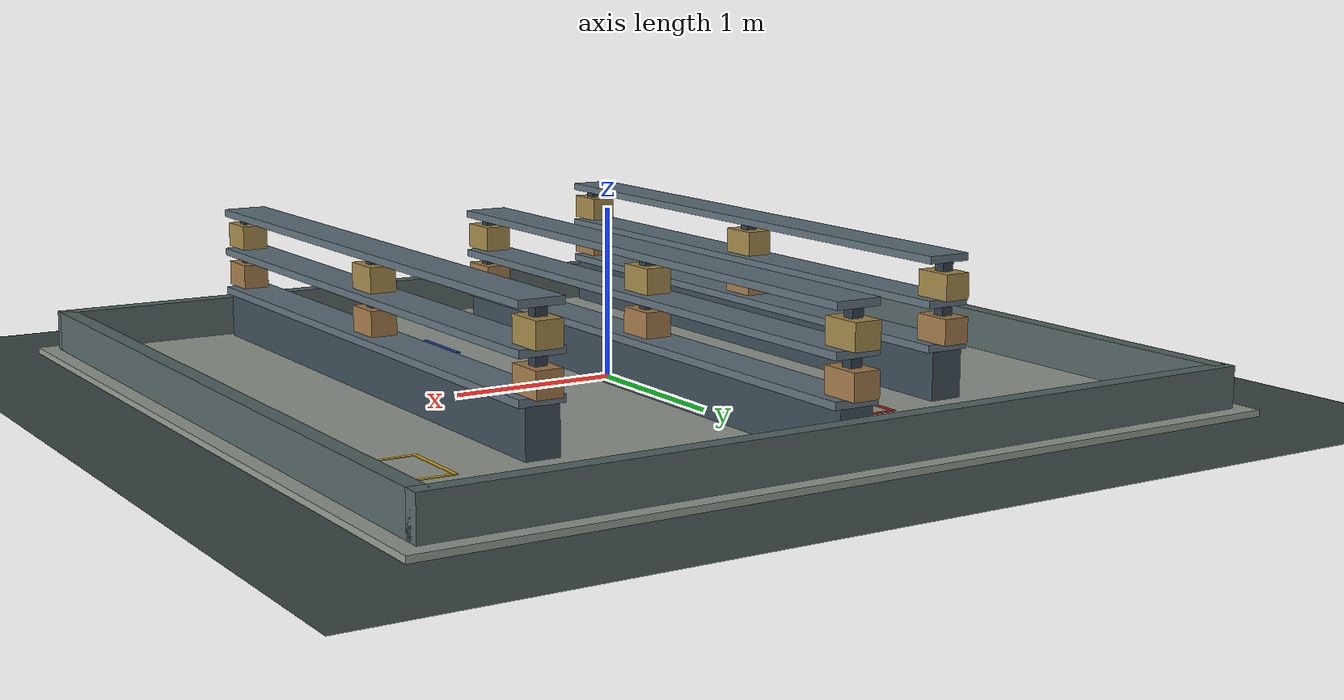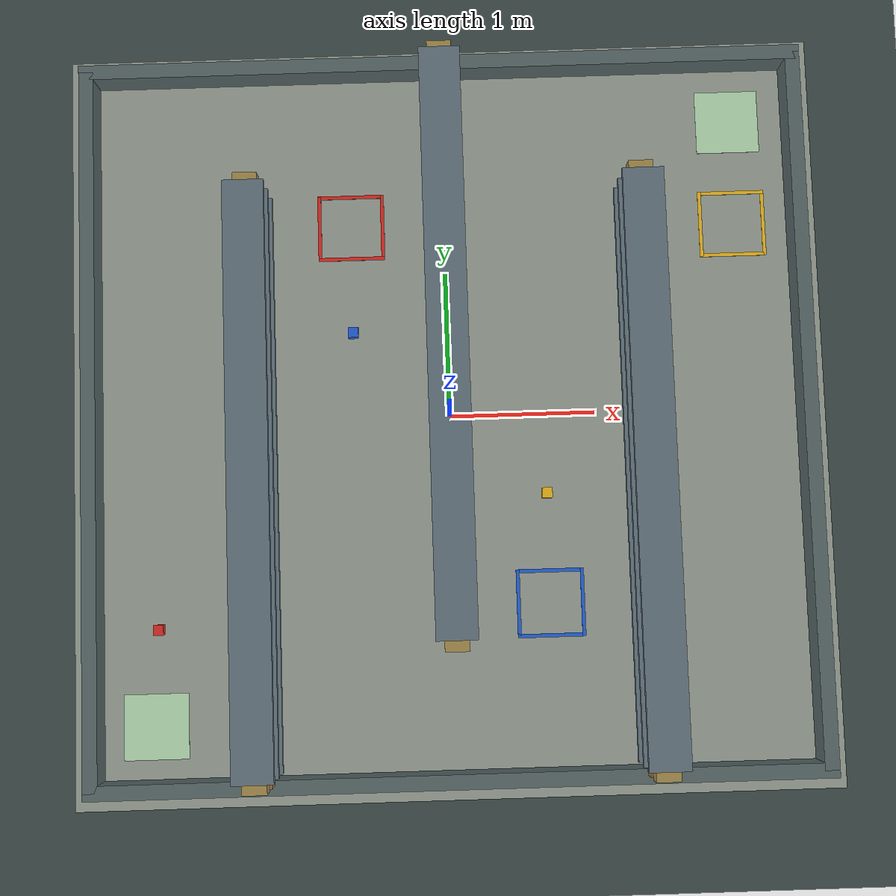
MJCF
<?xml version='1.0' encoding='utf-8'?>
<mujoco model="shelf-maze"><compiler angle="radian" /><asset><material name="appearance_ground" rgba="0.24 0.29 0.28 1.0" roughness=".9" metallic="0" /><material name="appearance_floor" rgba="0.58 0.61 0.57 1.0" roughness=".9" metallic="0" /><material name="appearance_shelf_0_plinth" rgba="0.24 0.3 0.34 1.0" roughness=".9" metallic="0" /><material name="appearance_shelf_0_level_0.3" rgba="0.38 0.45 0.49 1.0" roughness=".9" metallic="0" /><material name="appearance_shelf_0_level_0.55" rgba="0.38 0.45 0.49 1.0" roughness=".9" metallic="0" /><material name="appearance_shelf_0_level_0.8" rgba="0.38 0.45 0.49 1.0" roughness=".9" metallic="0" /><material name="appearance_shelf_0_post_0" rgba="0.18 0.24 0.28 1.0" roughness=".9" metallic="0" /><material name="appearance_shelf_0_stock_0_0" rgba="0.64 0.48 0.29 1.0" roughness=".9" metallic="0" /><material name="appearance_shelf_0_stock_0_1" rgba="0.64 0.54 0.29 1.0" roughness=".9" metallic="0" /><material name="appearance_shelf_0_post_1" rgba="0.18 0.24 0.28 1.0" roughness=".9" metallic="0" /><material name="appearance_shelf_0_stock_1_0" rgba="0.64 0.48 0.29 1.0" roughness=".9" metallic="0" /><material name="appearance_shelf_0_stock_1_1" rgba="0.64 0.54 0.29 1.0" roughness=".9" metallic="0" /><material name="appearance_shelf_0_post_2" rgba="0.18 0.24 0.28 1.0" roughness=".9" metallic="0" /><material name="appearance_shelf_0_stock_2_0" rgba="0.64 0.48 0.29 1.0" roughness=".9" metallic="0" /><material name="appearance_shelf_0_stock_2_1" rgba="0.64 0.54 0.29 1.0" roughness=".9" metallic="0" /><material name="appearance_shelf_1_plinth" rgba="0.24 0.3 0.34 1.0" roughness=".9" metallic="0" /><material name="appearance_shelf_1_level_0.3" rgba="0.38 0.45 0.49 1.0" roughness=".9" metallic="0" /><material name="appearance_shelf_1_level_0.55" rgba="0.38 0.45 0.49 1.0" roughness=".9" metallic="0" /><material name="appearance_shelf_1_level_0.8" rgba="0.38 0.45 0.49 1.0" roughness=".9" metallic="0" /><material name="appearance_shelf_1_post_0" rgba="0.18 0.24 0.28 1.0" roughness=".9" metallic="0" /><material name="appearance_shelf_1_stock_0_0" rgba="0.64 0.48 0.29 1.0" roughness=".9" metallic="0" /><material name="appearance_shelf_1_stock_0_1" rgba="0.64 0.54 0.29 1.0" roughness=".9" metallic="0" /><material name="appearance_shelf_1_post_1" rgba="0.18 0.24 0.28 1.0" roughness=".9" metallic="0" /><material name="appearance_shelf_1_stock_1_0" rgba="0.64 0.48 0.29 1.0" roughness=".9" metallic="0" /><material name="appearance_shelf_1_stock_1_1" rgba="0.64 0.54 0.29 1.0" roughness=".9" metallic="0" /><material name="appearance_shelf_1_post_2" rgba="0.18 0.24 0.28 1.0" roughness=".9" metallic="0" /><material name="appearance_shelf_1_stock_2_0" rgba="0.64 0.48 0.29 1.0" roughness=".9" metallic="0" /><material name="appearance_shelf_1_stock_2_1" rgba="0.64 0.54 0.29 1.0" roughness=".9" metallic="0" /><material name="appearance_shelf_2_plinth" rgba="0.24 0.3 0.34 1.0" roughness=".9" metallic="0" /><material name="appearance_shelf_2_level_0.3" rgba="0.38 0.45 0.49 1.0" roughness=".9" metallic="0" /><material name="appearance_shelf_2_level_0.55" rgba="0.38 0.45 0.49 1.0" roughness=".9" metallic="0" /><material name="appearance_shelf_2_level_0.8" rgba="0.38 0.45 0.49 1.0" roughness=".9" metallic="0" /><material name="appearance_shelf_2_post_0" rgba="0.18 0.24 0.28 1.0" roughness=".9" metallic="0" /><material name="appearance_shelf_2_stock_0_0" rgba="0.64 0.48 0.29 1.0" roughness=".9" metallic="0" /><material name="appearance_shelf_2_stock_0_1" rgba="0.64 0.54 0.29 1.0" roughness=".9" metallic="0" /><material name="appearance_shelf_2_post_1" rgba="0.18 0.24 0.28 1.0" roughness=".9" metallic="0" /><material name="appearance_shelf_2_stock_1_0" rgba="0.64 0.48 0.29 1.0" roughness=".9" metallic="0" /><material name="appearance_shelf_2_stock_1_1" rgba="0.64 0.54 0.29 1.0" roughness=".9" metallic="0" /><material name="appearance_shelf_2_post_2" rgba="0.18 0.24 0.28 1.0" roughness=".9" metallic="0" /><material name="appearance_shelf_2_stock_2_0" rgba="0.64 0.48 0.29 1.0" roughness=".9" metallic="0" /><material name="appearance_shelf_2_stock_2_1" rgba="0.64 0.54 0.29 1.0" roughness=".9" metallic="0" /><material name="appearance_boundary_y-2.45" rgba="0.34 0.4 0.4 1.0" roughness=".9" metallic="0" /><material name="appearance_boundary_y2.45" rgba="0.34 0.4 0.4 1.0" roughness=".9" metallic="0" /><material name="appearance_boundary_x-2.45" rgba="0.34 0.4 0.4 1.0" roughness=".9" metallic="0" /><material name="appearance_boundary_x2.45" rgba="0.34 0.4 0.4 1.0" roughness=".9" metallic="0" /><material name="appearance_red_cube" rgba="0.84 0.16 0.13 1.0" roughness=".9" metallic="0" /><material name="appearance_red_target_-0.22_0" rgba="0.84 0.16 0.13 1.0" roughness=".9" metallic="0" /><material name="appearance_red_target_0.22_0" rgba="0.84 0.16 0.13 1.0" roughness=".9" metallic="0" /><material name="appearance_red_target_0_-0.22" rgba="0.84 0.16 0.13 1.0" roughness=".9" metallic="0" /><material name="appearance_red_target_0_0.22" rgba="0.84 0.16 0.13 1.0" roughness=".9" metallic="0" /><material name="appearance_blue_cube" rgba="0.13 0.37 0.83 1.0" roughness=".9" metallic="0" /><material name="appearance_blue_target_-0.22_0" rgba="0.13 0.37 0.83 1.0" roughness=".9" metallic="0" /><material name="appearance_blue_target_0.22_0" rgba="0.13 0.37 0.83 1.0" roughness=".9" metallic="0" /><material name="appearance_blue_target_0_-0.22" rgba="0.13 0.37 0.83 1.0" roughness=".9" metallic="0" /><material name="appearance_blue_target_0_0.22" rgba="0.13 0.37 0.83 1.0" roughness=".9" metallic="0" /><material name="appearance_yellow_cube" rgba="0.92 0.71 0.1 1.0" roughness=".9" metallic="0" /><material name="appearance_yellow_target_-0.22_0" rgba="0.92 0.71 0.1 1.0" roughness=".9" metallic="0" /><material name="appearance_yellow_target_0.22_0" rgba="0.92 0.71 0.1 1.0" roughness=".9" metallic="0" /><material name="appearance_yellow_target_0_-0.22" rgba="0.92 0.71 0.1 1.0" roughness=".9" metallic="0" /><material name="appearance_yellow_target_0_0.22" rgba="0.92 0.71 0.1 1.0" roughness=".9" metallic="0" /><material name="appearance_start_paint" rgba="0.7 0.85 0.69 1.0" roughness=".9" metallic="0" /><material name="appearance_exit_paint" rgba="0.7 0.85 0.69 1.0" roughness=".9" metallic="0" /></asset><worldbody><geom name="ground" type="plane" pos="0 0 -0.03" size="20 20 .1" rgba=".24 .29 .28 1" friction="1 .005 .0001" material="appearance_ground" /><light name="sun" pos="0 0 7" dir="0 0 -1" directional="true" diffuse=".25 .25 .25" /><geom name="floor" type="box" pos="0 0 -0.025" size="2.6 2.6 0.025" rgba="0.58 0.61 0.57 1" friction="1 .005 .0001" material="appearance_floor" /><geom name="shelf_0_plinth" type="box" pos="-1.3 -0.425 0.14" size="0.1 1.925 0.14" rgba="0.24 0.3 0.34 1" friction="1 .005 .0001" material="appearance_shelf_0_plinth" /><geom name="shelf_0_level_0.3" type="box" pos="-1.3 -0.425 0.3" size="0.135 1.925 0.022" rgba="0.38 0.45 0.49 1" friction="1 .005 .0001" material="appearance_shelf_0_level_0.3" /><geom name="shelf_0_level_0.55" type="box" pos="-1.3 -0.425 0.55" size="0.135 1.925 0.022" rgba="0.38 0.45 0.49 1" friction="1 .005 .0001" material="appearance_shelf_0_level_0.55" /><geom name="shelf_0_level_0.8" type="box" pos="-1.3 -0.425 0.8" size="0.135 1.925 0.022" rgba="0.38 0.45 0.49 1" friction="1 .005 .0001" material="appearance_shelf_0_level_0.8" /><geom name="shelf_0_post_0" type="box" pos="-1.3 -2.305 0.4" size="0.035 0.035 0.4" rgba="0.18 0.24 0.28 1" friction="1 .005 .0001" material="appearance_shelf_0_post_0" /><geom name="shelf_0_stock_0_0" type="box" pos="-1.3 -2.305 0.4" size="0.08 0.12 0.075" rgba="0.64 0.48 0.29 1" friction="1 .005 .0001" contype="0" conaffinity="0" mass="0" material="appearance_shelf_0_stock_0_0" /><geom name="shelf_0_stock_0_1" type="box" pos="-1.3 -2.305 0.65" size="0.08 0.12 0.075" rgba="0.64 0.54 0.29 1" friction="1 .005 .0001" contype="0" conaffinity="0" mass="0" material="appearance_shelf_0_stock_0_1" /><geom name="shelf_0_post_1" type="box" pos="-1.3 -0.425 0.4" size="0.035 0.035 0.4" rgba="0.18 0.24 0.28 1" friction="1 .005 .0001" material="appearance_shelf_0_post_1" /><geom name="shelf_0_stock_1_0" type="box" pos="-1.3 -0.425 0.4" size="0.08 0.12 0.075" rgba="0.64 0.48 0.29 1" friction="1 .005 .0001" contype="0" conaffinity="0" mass="0" material="appearance_shelf_0_stock_1_0" /><geom name="shelf_0_stock_1_1" type="box" pos="-1.3 -0.425 0.65" size="0.08 0.12 0.075" rgba="0.64 0.54 0.29 1" friction="1 .005 .0001" contype="0" conaffinity="0" mass="0" material="appearance_shelf_0_stock_1_1" /><geom name="shelf_0_post_2" type="box" pos="-1.3 1.455 0.4" size="0.035 0.035 0.4" rgba="0.18 0.24 0.28 1" friction="1 .005 .0001" material="appearance_shelf_0_post_2" /><geom name="shelf_0_stock_2_0" type="box" pos="-1.3 1.455 0.4" size="0.08 0.12 0.075" rgba="0.64 0.48 0.29 1" friction="1 .005 .0001" contype="0" conaffinity="0" mass="0" material="appearance_shelf_0_stock_2_0" /><geom name="shelf_0_stock_2_1" type="box" pos="-1.3 1.455 0.65" size="0.08 0.12 0.075" rgba="0.64 0.54 0.29 1" friction="1 .005 .0001" contype="0" conaffinity="0" mass="0" material="appearance_shelf_0_stock_2_1" /><geom name="shelf_1_plinth" type="box" pos="0 0.425 0.14" size="0.1 1.925 0.14" rgba="0.24 0.3 0.34 1" friction="1 .005 .0001" material="appearance_shelf_1_plinth" /><geom name="shelf_1_level_0.3" type="box" pos="0 0.425 0.3" size="0.135 1.925 0.022" rgba="0.38 0.45 0.49 1" friction="1 .005 .0001" material="appearance_shelf_1_level_0.3" /><geom name="shelf_1_level_0.55" type="box" pos="0 0.425 0.55" size="0.135 1.925 0.022" rgba="0.38 0.45 0.49 1" friction="1 .005 .0001" material="appearance_shelf_1_level_0.55" /><geom name="shelf_1_level_0.8" type="box" pos="0 0.425 0.8" size="0.135 1.925 0.022" rgba="0.38 0.45 0.49 1" friction="1 .005 .0001" material="appearance_shelf_1_level_0.8" /><geom name="shelf_1_post_0" type="box" pos="0 -1.455 0.4" size="0.035 0.035 0.4" rgba="0.18 0.24 0.28 1" friction="1 .005 .0001" material="appearance_shelf_1_post_0" /><geom name="shelf_1_stock_0_0" type="box" pos="0 -1.455 0.4" size="0.08 0.12 0.075" rgba="0.64 0.48 0.29 1" friction="1 .005 .0001" contype="0" conaffinity="0" mass="0" material="appearance_shelf_1_stock_0_0" /><geom name="shelf_1_stock_0_1" type="box" pos="0 -1.455 0.65" size="0.08 0.12 0.075" rgba="0.64 0.54 0.29 1" friction="1 .005 .0001" contype="0" conaffinity="0" mass="0" material="appearance_shelf_1_stock_0_1" /><geom name="shelf_1_post_1" type="box" pos="0 0.425 0.4" size="0.035 0.035 0.4" rgba="0.18 0.24 0.28 1" friction="1 .005 .0001" material="appearance_shelf_1_post_1" /><geom name="shelf_1_stock_1_0" type="box" pos="0 0.425 0.4" size="0.08 0.12 0.075" rgba="0.64 0.48 0.29 1" friction="1 .005 .0001" contype="0" conaffinity="0" mass="0" material="appearance_shelf_1_stock_1_0" /><geom name="shelf_1_stock_1_1" type="box" pos="0 0.425 0.65" size="0.08 0.12 0.075" rgba="0.64 0.54 0.29 1" friction="1 .005 .0001" contype="0" conaffinity="0" mass="0" material="appearance_shelf_1_stock_1_1" /><geom name="shelf_1_post_2" type="box" pos="0 2.305 0.4" size="0.035 0.035 0.4" rgba="0.18 0.24 0.28 1" friction="1 .005 .0001" material="appearance_shelf_1_post_2" /><geom name="shelf_1_stock_2_0" type="box" pos="0 2.305 0.4" size="0.08 0.12 0.075" rgba="0.64 0.48 0.29 1" friction="1 .005 .0001" contype="0" conaffinity="0" mass="0" material="appearance_shelf_1_stock_2_0" /><geom name="shelf_1_stock_2_1" type="box" pos="0 2.305 0.65" size="0.08 0.12 0.075" rgba="0.64 0.54 0.29 1" friction="1 .005 .0001" contype="0" conaffinity="0" mass="0" material="appearance_shelf_1_stock_2_1" /><geom name="shelf_2_plinth" type="box" pos="1.3 -0.425 0.14" size="0.1 1.925 0.14" rgba="0.24 0.3 0.34 1" friction="1 .005 .0001" material="appearance_shelf_2_plinth" /><geom name="shelf_2_level_0.3" type="box" pos="1.3 -0.425 0.3" size="0.135 1.925 0.022" rgba="0.38 0.45 0.49 1" friction="1 .005 .0001" material="appearance_shelf_2_level_0.3" /><geom name="shelf_2_level_0.55" type="box" pos="1.3 -0.425 0.55" size="0.135 1.925 0.022" rgba="0.38 0.45 0.49 1" friction="1 .005 .0001" material="appearance_shelf_2_level_0.55" /><geom name="shelf_2_level_0.8" type="box" pos="1.3 -0.425 0.8" size="0.135 1.925 0.022" rgba="0.38 0.45 0.49 1" friction="1 .005 .0001" material="appearance_shelf_2_level_0.8" /><geom name="shelf_2_post_0" type="box" pos="1.3 -2.305 0.4" size="0.035 0.035 0.4" rgba="0.18 0.24 0.28 1" friction="1 .005 .0001" material="appearance_shelf_2_post_0" /><geom name="shelf_2_stock_0_0" type="box" pos="1.3 -2.305 0.4" size="0.08 0.12 0.075" rgba="0.64 0.48 0.29 1" friction="1 .005 .0001" contype="0" conaffinity="0" mass="0" material="appearance_shelf_2_stock_0_0" /><geom name="shelf_2_stock_0_1" type="box" pos="1.3 -2.305 0.65" size="0.08 0.12 0.075" rgba="0.64 0.54 0.29 1" friction="1 .005 .0001" contype="0" conaffinity="0" mass="0" material="appearance_shelf_2_stock_0_1" /><geom name="shelf_2_post_1" type="box" pos="1.3 -0.425 0.4" size="0.035 0.035 0.4" rgba="0.18 0.24 0.28 1" friction="1 .005 .0001" material="appearance_shelf_2_post_1" /><geom name="shelf_2_stock_1_0" type="box" pos="1.3 -0.425 0.4" size="0.08 0.12 0.075" rgba="0.64 0.48 0.29 1" friction="1 .005 .0001" contype="0" conaffinity="0" mass="0" material="appearance_shelf_2_stock_1_0" /><geom name="shelf_2_stock_1_1" type="box" pos="1.3 -0.425 0.65" size="0.08 0.12 0.075" rgba="0.64 0.54 0.29 1" friction="1 .005 .0001" contype="0" conaffinity="0" mass="0" material="appearance_shelf_2_stock_1_1" /><geom name="shelf_2_post_2" type="box" pos="1.3 1.455 0.4" size="0.035 0.035 0.4" rgba="0.18 0.24 0.28 1" friction="1 .005 .0001" material="appearance_shelf_2_post_2" /><geom name="shelf_2_stock_2_0" type="box" pos="1.3 1.455 0.4" size="0.08 0.12 0.075" rgba="0.64 0.48 0.29 1" friction="1 .005 .0001" contype="0" conaffinity="0" mass="0" material="appearance_shelf_2_stock_2_0" /><geom name="shelf_2_stock_2_1" type="box" pos="1.3 1.455 0.65" size="0.08 0.12 0.075" rgba="0.64 0.54 0.29 1" friction="1 .005 .0001" contype="0" conaffinity="0" mass="0" material="appearance_shelf_2_stock_2_1" /><geom name="boundary_y-2.45" type="box" pos="0 -2.45 0.12" size="2.5 0.05 0.12" rgba="0.34 0.4 0.4 1" friction="1 .005 .0001" material="appearance_boundary_y-2.45" /><geom name="boundary_y2.45" type="box" pos="0 2.45 0.12" size="2.5 0.05 0.12" rgba="0.34 0.4 0.4 1" friction="1 .005 .0001" material="appearance_boundary_y2.45" /><geom name="boundary_x-2.45" type="box" pos="-2.45 0 0.12" size="0.05 2.45 0.12" rgba="0.34 0.4 0.4 1" friction="1 .005 .0001" material="appearance_boundary_x-2.45" /><geom name="boundary_x2.45" type="box" pos="2.45 0 0.12" size="0.05 2.45 0.12" rgba="0.34 0.4 0.4 1" friction="1 .005 .0001" material="appearance_boundary_x2.45" /><body name="prop:red" pos="-2.02 -1.4 0.036"><freejoint name="prop:red:free" /><geom name="red_cube" type="box" pos="0 0 0" size="0.035 0.035 0.035" rgba="0.84 0.16 0.13 1" friction="1 .005 .0001" mass=".04" material="appearance_red_cube" /></body><geom name="red_target_-0.22_0" type="box" pos="-0.87 1.35 0.002" size="0.012 0.23 0.002" rgba="0.84 0.16 0.13 1" friction="1 .005 .0001" contype="0" conaffinity="0" mass="0" material="appearance_red_target_-0.22_0" /><geom name="red_target_0.22_0" type="box" pos="-0.43000000000000005 1.35 0.002" size="0.012 0.23 0.002" rgba="0.84 0.16 0.13 1" friction="1 .005 .0001" contype="0" conaffinity="0" mass="0" material="appearance_red_target_0.22_0" /><geom name="red_target_0_-0.22" type="box" pos="-0.65 1.1300000000000001 0.002" size="0.23 0.012 0.002" rgba="0.84 0.16 0.13 1" friction="1 .005 .0001" contype="0" conaffinity="0" mass="0" material="appearance_red_target_0_-0.22" /><geom name="red_target_0_0.22" type="box" pos="-0.65 1.57 0.002" size="0.23 0.012 0.002" rgba="0.84 0.16 0.13 1" friction="1 .005 .0001" contype="0" conaffinity="0" mass="0" material="appearance_red_target_0_0.22" /><site name="target_red" pos="-0.65 1.35 0.04" size=".2 .2 .08" type="box" rgba="0 0 0 0" /><body name="prop:blue" pos="-0.65 0.6 0.036"><freejoint name="prop:blue:free" /><geom name="blue_cube" type="box" pos="0 0 0" size="0.035 0.035 0.035" rgba="0.13 0.37 0.83 1" friction="1 .005 .0001" mass=".04" material="appearance_blue_cube" /></body><geom name="blue_target_-0.22_0" type="box" pos="0.43000000000000005 -1.3 0.002" size="0.012 0.23 0.002" rgba="0.13 0.37 0.83 1" friction="1 .005 .0001" contype="0" conaffinity="0" mass="0" material="appearance_blue_target_-0.22_0" /><geom name="blue_target_0.22_0" type="box" pos="0.87 -1.3 0.002" size="0.012 0.23 0.002" rgba="0.13 0.37 0.83 1" friction="1 .005 .0001" contype="0" conaffinity="0" mass="0" material="appearance_blue_target_0.22_0" /><geom name="blue_target_0_-0.22" type="box" pos="0.65 -1.52 0.002" size="0.23 0.012 0.002" rgba="0.13 0.37 0.83 1" friction="1 .005 .0001" contype="0" conaffinity="0" mass="0" material="appearance_blue_target_0_-0.22" /><geom name="blue_target_0_0.22" type="box" pos="0.65 -1.08 0.002" size="0.23 0.012 0.002" rgba="0.13 0.37 0.83 1" friction="1 .005 .0001" contype="0" conaffinity="0" mass="0" material="appearance_blue_target_0_0.22" /><site name="target_blue" pos="0.65 -1.3 0.04" size=".2 .2 .08" type="box" rgba="0 0 0 0" /><body name="prop:yellow" pos="0.65 -0.55 0.036"><freejoint name="prop:yellow:free" /><geom name="yellow_cube" type="box" pos="0 0 0" size="0.035 0.035 0.035" rgba="0.92 0.71 0.1 1" friction="1 .005 .0001" mass=".04" material="appearance_yellow_cube" /></body><geom name="yellow_target_-0.22_0" type="box" pos="1.8 1.3 0.002" size="0.012 0.23 0.002" rgba="0.92 0.71 0.1 1" friction="1 .005 .0001" contype="0" conaffinity="0" mass="0" material="appearance_yellow_target_-0.22_0" /><geom name="yellow_target_0.22_0" type="box" pos="2.24 1.3 0.002" size="0.012 0.23 0.002" rgba="0.92 0.71 0.1 1" friction="1 .005 .0001" contype="0" conaffinity="0" mass="0" material="appearance_yellow_target_0.22_0" /><geom name="yellow_target_0_-0.22" type="box" pos="2.02 1.08 0.002" size="0.23 0.012 0.002" rgba="0.92 0.71 0.1 1" friction="1 .005 .0001" contype="0" conaffinity="0" mass="0" material="appearance_yellow_target_0_-0.22" /><geom name="yellow_target_0_0.22" type="box" pos="2.02 1.52 0.002" size="0.23 0.012 0.002" rgba="0.92 0.71 0.1 1" friction="1 .005 .0001" contype="0" conaffinity="0" mass="0" material="appearance_yellow_target_0_0.22" /><site name="target_yellow" pos="2.02 1.3 0.04" size=".2 .2 .08" type="box" rgba="0 0 0 0" /><geom name="start_paint" type="box" pos="-2.05 -2.05 0.001" size="0.22 0.22 0.001" rgba="0.7 0.85 0.69 1" friction="1 .005 .0001" contype="0" conaffinity="0" mass="0" material="appearance_start_paint" /><site name="start" pos="-2.05 -2.05 0.005" size=".20 .20 .005" type="box" rgba="0 0 0 0" /><geom name="exit_paint" type="box" pos="2.02 2.03 0.001" size="0.22 0.22 0.001" rgba="0.7 0.85 0.69 1" friction="1 .005 .0001" contype="0" conaffinity="0" mass="0" material="appearance_exit_paint" /><site name="exit" pos="2.02 2.03 0.005" size=".20 .20 .005" type="box" rgba="0 0 0 0" /></worldbody></mujoco>
